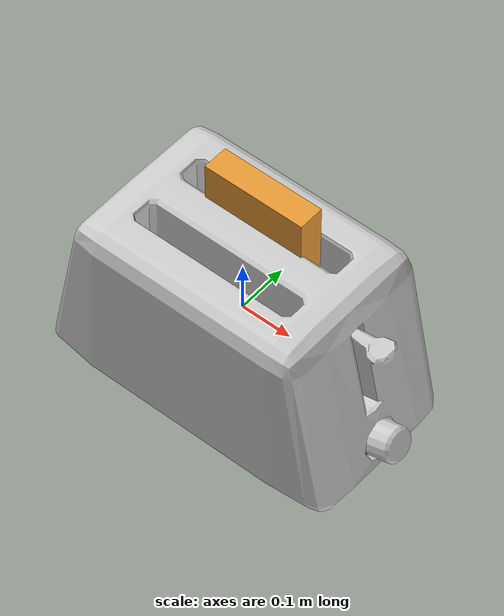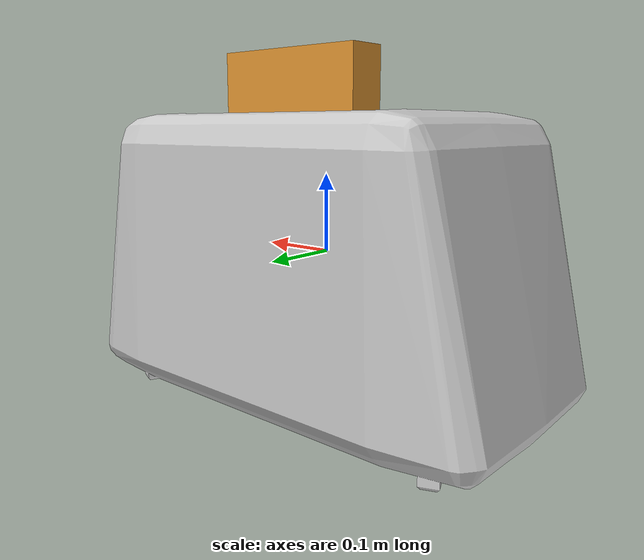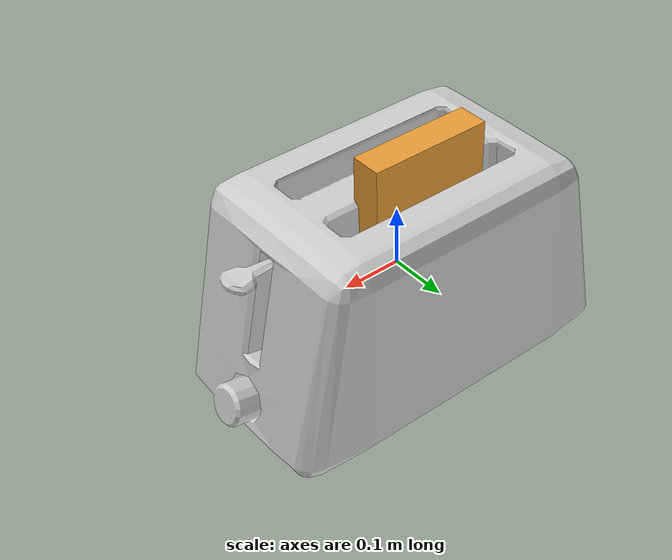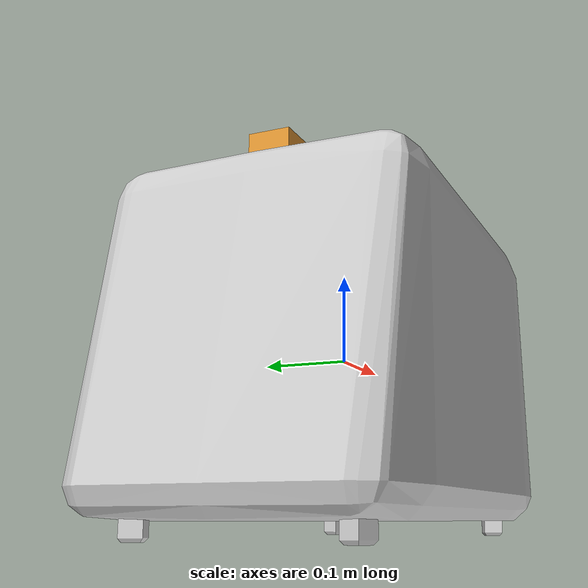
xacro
<robot name="toaster" xmlns:xacro="http://ros.org/wiki/xacro">
  <!-- Toaster Body -->
  <link name="toaster_body">
   <visual>
    <geometry>
        <mesh filename="file://$(find eject_toast)/meshes/toaster.stl" scale="0.25 0.25 0.25" />
    </geometry>
      <material name="toaster_material">
        <color rgba="0.8 0.8 0.8 1"/>
      </material>
    </visual>
  </link>

  <!-- Toast Link -->
  <link name="toast">
    <visual>
      <geometry>
        <box size="0.2 0.05 0.2"/>
      </geometry>
      <material name="toast_material">
        <color rgba="0.9 0.6 0.2 1"/>
      </material>
    </visual>
    <collision>
      <geometry>
        <box size="0.1 0.1 0.02"/>
      </geometry>
    </collision>
  </link>

  <!-- Prismatic Joint -->
  <joint name="toast_joint" type="prismatic">
    <parent link="toaster_body"/>
    <child link="toast"/>
    <origin xyz="0 0.05 0.15" rpy="0 0 0"/>
    <axis xyz="0 0 1"/>
    <limit lower="0.0" upper="0.1" effort="5.0" velocity="1.0"/>
  </joint>
</robot>
